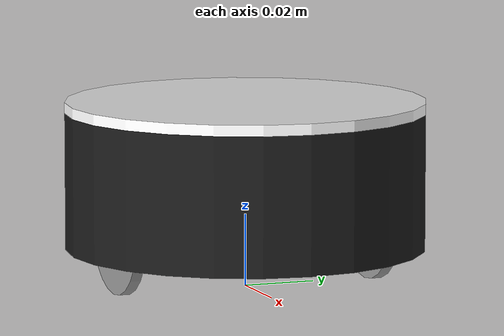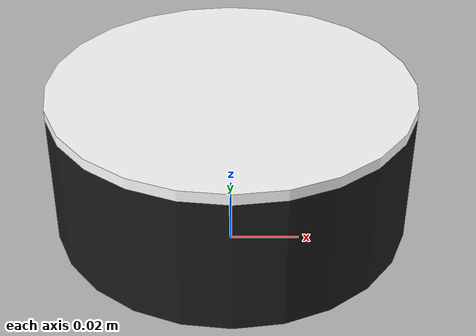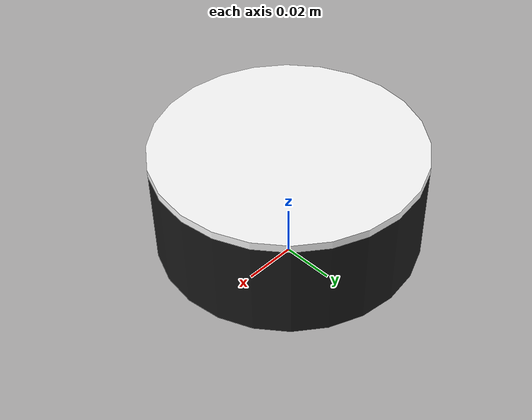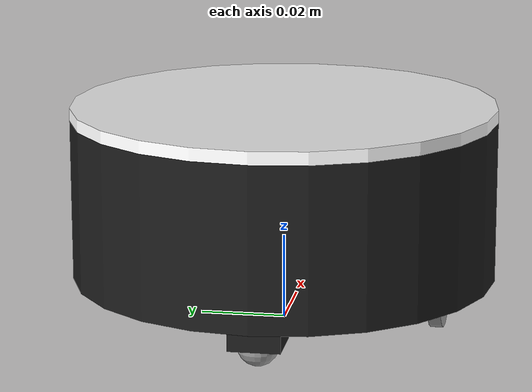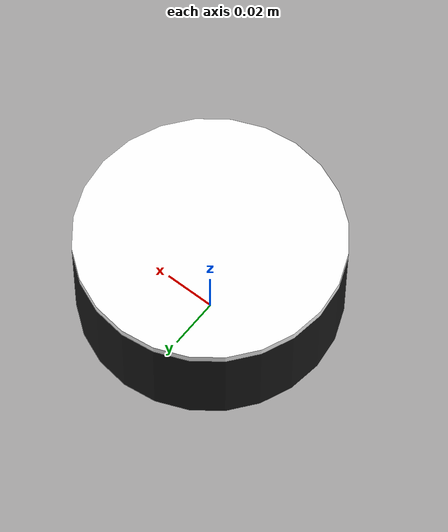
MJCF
<mujoco model="agent">
	<asset>
		<material name="chassis_base" rgba="0.1 0.1 0.1 1" />
		<material name="chassis_top" rgba="1.0 1.0 1.0 1" />
		<material name="wheel" rgba="0.6 0.6 0.6 1" />
		<material name="caster" rgba="0.6 0.6 0.6 1" />
	</asset>
	<worldbody>
		<body name="agent" pos="0 0 0.0299">
		    <freejoint name="agent_root" />
		    <inertial
                pos="-0.0148 0 -0.009"
                diaginertia="0.000112 0.000112 0.000188"
                mass="0.15"
            />
			<geom
                name="chassis_base"
                type="cylinder"
                size="0.05 0.019"
                material="chassis_base"
            />
			<geom
                name="chassis_top"
                type="cylinder"
                pos="0 0 0.0205"
                size="0.05 0.0015"
                material="chassis_top"
            />

            <body name="left_wheel" pos="0 0.037123 -0.0099">
                <joint
                    name="left_wheel_joint"
                    type="hinge"
                    axis="0 1 0"
                    damping="0.0023"
                    frictionloss="0.019"
                />
                <geom
                    name="left_wheel_geom"
                    type="cylinder"
                    size="0.020 0.0015"
                    euler="90 0 0"
                    mass="0.00425"
                    material="wheel"
                    friction="1.1 0.005 0.002"
                />
            </body>

            <body name="right_wheel" pos="0 -0.037123 -0.0099">
                <joint
                    name="right_wheel_joint"
                    type="hinge"
                    axis="0 1 0"
                    damping="0.0023"
                    frictionloss="0.019"
                />
                <geom
                    name="right_wheel_geom"
                    type="cylinder"
                    size="0.020 0.0015"
                    euler="90 0 0"
                    mass="0.00425"
                    material="wheel"
                    friction="1.1 0.005 0.002"
                />
            </body>

            <body name="caster" pos="-0.037 0 -0.0251">
                <geom
                    name="caster_housing"
                    type="box"
                    size="0.006 0.006 0.004"
                    pos="0 0 0.004"
                    mass="0.004"
                    material="chassis_base"
                />

                <body name="caster_ball" pos="0 0 0">
                    <joint
                        name="caster_ball_joint"
                        type="ball"
                        damping="0.000001"
                    />
                    <geom
                        name="caster_ball_geom"
                        type="sphere"
                        size="0.0048"
                        mass="0.002"
                        material="caster"
                        friction="0.7 0.005 0.0001"
                    />
                </body>
            </body>
		</body>
	</worldbody>
	<actuator>
	<motor
            name="left_motor"
            joint="left_wheel_joint"
            gear="0.19"
            ctrlrange="-1 1"
            ctrllimited="true"
        />
    <motor
            name="right_motor"
            joint="right_wheel_joint"
            gear="0.19"
            ctrlrange="-1 1"
            ctrllimited="true"
        />
    </actuator>
    <sensor>
        <framepos name="agent_pos" objtype="body" objname="agent" />
        <framequat name="agent_quat" objtype="body" objname="agent" />
        <framelinvel name="agent_vel" objtype="body" objname="agent" />
        <frameangvel name="agent_angvel" objtype="body" objname="agent" />
    </sensor>
</mujoco>
